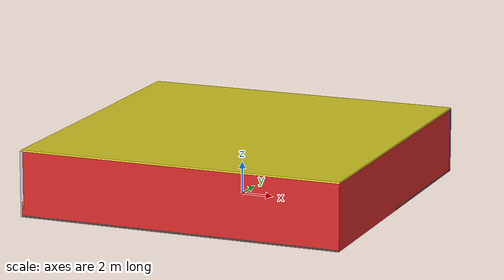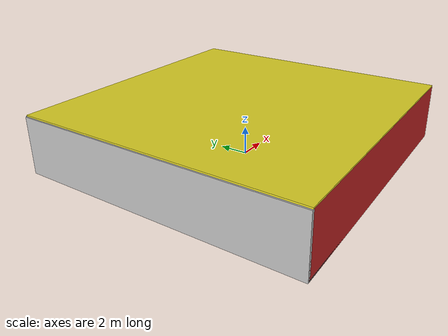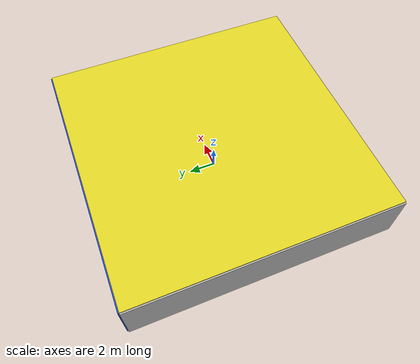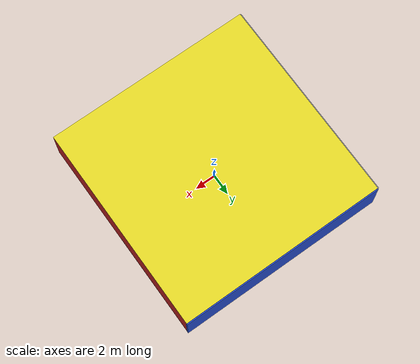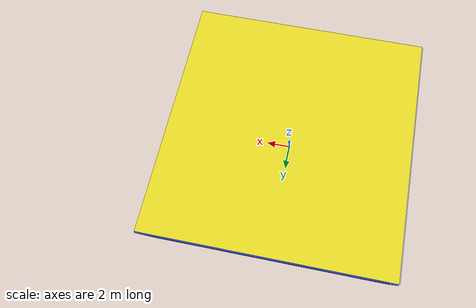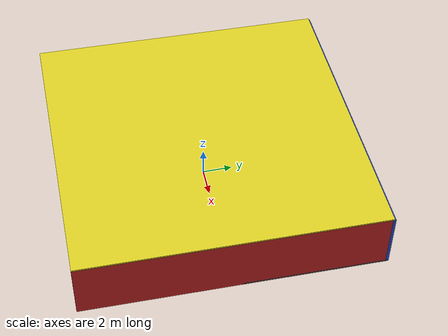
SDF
<sdf version="1.4">
 <world name="default">
  <physics type="ode">
   <max_step_size>0.001</max_step_size>
   <real_time_factor>1</real_time_factor>
   <real_time_update_rate>1000</real_time_update_rate>
   <gravity>0 0 -9.8</gravity>
  </physics>
  <scene><ambient>0.4 0.4 0.4 1</ambient><background>0.7 0.7 0.7 1</background><shadows>1</shadows></scene>
  <model name="Surrounding">
   <static>1</static>
   <link name="Ceiling">
    <collision name="Ceiling_Collision"><geometry><box><size>20 20 0.1</size></box></geometry></collision>
    <visual name="Ceiling_Visual">
     <geometry><box><size>20 20 0.1</size></box></geometry>
     <material>
      <script><uri>file://media/materials/scripts/gazebo.material</uri><name>Gazebo/Yellow</name></script>
     </material>
    </visual>
    <pose>0 0 4.05 0 0 0</pose>
   </link>
   <link name="Wall_South">
    <collision name="Wall_South_Collision">
     <geometry><box><size>20 0 4</size></box></geometry>
     <pose>0 0 2 0 -0 0</pose>
    </collision>
    <visual name="Wall_South_Visual">
     <pose>0 0 2 0 -0 0</pose>
     <geometry><box><size>20 0 4</size></box></geometry>
     <material>
      <script><uri>file://media/materials/scripts/gazebo.material</uri><name>Gazebo/Red</name></script>
     </material>
    </visual>
    <velocity_decay><linear>0</linear><angular>0</angular></velocity_decay>
    <pose>0 -10 0 0 -0 0</pose>
   </link>
   <link name="Wall_East">
    <collision name="Wall_21_Collision">
     <geometry><box><size>20 0 4</size></box></geometry>
     <pose>0 0 2 0 -0 0</pose>
    </collision>
    <visual name="Wall_21_Visual">
     <pose>0 0 2 0 -0 0</pose>
     <geometry><box><size>20 0 4</size></box></geometry>
     <material>
      <script><uri>file://media/materials/scripts/gazebo.material</uri><name>Gazebo/RedBright</name></script>
     </material>
    </visual>
    <velocity_decay><linear>0</linear><angular>0</angular></velocity_decay>
    <pose>10 0 0 0 -0 1.5708</pose>
   </link>
   <link name="Wall_North">
    <collision name="Wall_22_Collision">
     <geometry><box><size>20 0.2 4</size></box></geometry>
     <pose>0 0 2 0 -0 0</pose>
    </collision>
    <visual name="Wall_22_Visual">
     <pose>0 0 2 0 -0 0</pose>
     <geometry><box><size>20 0.2 4</size></box></geometry>
     <material>
      <script><uri>file://media/materials/scripts/gazebo.material</uri><name>Gazebo/BlueGlow</name></script>
     </material>
    </visual>
    <velocity_decay><linear>0</linear><angular>0</angular></velocity_decay>
    <pose>0 10 0 0 -0 0</pose>
   </link>
   <link name="Wall_West">
    <collision name="Wall_23_Collision">
     <geometry><box><size>20 0.2 4</size></box></geometry>
     <pose>0 0 2 0 -0 0</pose>
    </collision>
    <visual name="Wall_23_Visual">
     <pose>0 0 2 0 -0 0</pose>
     <geometry><box><size>20 0.2 4</size></box></geometry>
     <material>
      <script><uri>file://media/materials/scripts/gazebo.material</uri><name>Gazebo/CloudySky</name></script>
     </material>
    </visual>
    <velocity_decay><linear>0</linear><angular>0</angular></velocity_decay>
    <pose>-10 0 0 0 0 -1.5708</pose>
   </link>
   <link name="Ground_link">
    <collision name="collision">
     <pose>0 0 .05 0 -0 0</pose>
     <geometry><box><size>20 20 0.1</size></box></geometry>
    </collision>
    <visual name="visual">
     <pose>0 0 .05 0 -0 0</pose>
     <geometry><box><size>20 20 0.1</size></box></geometry>
     <material>
      <script><uri>file://media/materials/scripts/gazebo.material</uri><name>Gazebo/Road</name></script>
     </material>
    </visual>
   </link>
   <static>1</static>
  </model>
  <spherical_coordinates>
   <surface_model>EARTH_WGS84</surface_model>
   <latitude_deg>0</latitude_deg>
   <longitude_deg>0</longitude_deg>
   <elevation>0</elevation>
   <heading_deg>0</heading_deg>
  </spherical_coordinates>
  <light name="lightball_0" type="diffuse">
   <diffuse>0.8 0.8 0.8 1</diffuse>
   <specular>0.2 0.2 0.2 1</specular>
   <attenuation>
    <range>100</range>
    <constant>0.7</constant>
    <linear>0.01</linear>
    <quadratic>0.001</quadratic>
   </attenuation>
   <direction>-0.5 0.1 -0.9</direction>
   <pose>-5.04189842842 5.39470567499 2.24798746399 0 0 0</pose>
  </light>
  <light name="lightball_1" type="diffuse">
   <diffuse>0.8 0.8 0.8 1</diffuse>
   <specular>0.2 0.2 0.2 1</specular>
   <attenuation>
    <range>100</range>
    <constant>0.7</constant>
    <linear>0.01</linear>
    <quadratic>0.001</quadratic>
   </attenuation>
   <direction>-0.5 0.1 -0.9</direction>
   <pose>8.15817229649 -2.22300188109 1.64791200102 0 0 0</pose>
  </light>
  <light name="lightball_2" type="diffuse">
   <diffuse>0.8 0.8 0.8 1</diffuse>
   <specular>0.2 0.2 0.2 1</specular>
   <attenuation>
    <range>100</range>
    <constant>0.7</constant>
    <linear>0.01</linear>
    <quadratic>0.001</quadratic>
   </attenuation>
   <direction>-0.5 0.1 -0.9</direction>
   <pose>-4.12411519152 -7.28575307636 3.46026613528 0 0 0</pose>
  </light>
  <light name="lightball_3" type="diffuse">
   <diffuse>0.8 0.8 0.8 1</diffuse>
   <specular>0.2 0.2 0.2 1</specular>
   <attenuation>
    <range>100</range>
    <constant>0.7</constant>
    <linear>0.01</linear>
    <quadratic>0.001</quadratic>
   </attenuation>
   <direction>-0.5 0.1 -0.9</direction>
   <pose>8.95026190894 9.44399195043 1.97267369749 0 0 0</pose>
  </light>
  <light name="lightball_4" type="diffuse">
   <diffuse>0.8 0.8 0.8 1</diffuse>
   <specular>0.2 0.2 0.2 1</specular>
   <attenuation>
    <range>100</range>
    <constant>0.7</constant>
    <linear>0.01</linear>
    <quadratic>0.001</quadratic>
   </attenuation>
   <direction>-0.5 0.1 -0.9</direction>
   <pose>-6.00296531913 3.63356728284 1.79608780955 0 0 0</pose>
  </light>
  <light name="lightball_5" type="diffuse">
   <diffuse>0.8 0.8 0.8 1</diffuse>
   <specular>0.2 0.2 0.2 1</specular>
   <attenuation>
    <range>100</range>
    <constant>0.7</constant>
    <linear>0.01</linear>
    <quadratic>0.001</quadratic>
   </attenuation>
   <direction>-0.5 0.1 -0.9</direction>
   <pose>5.23947014673 2.86683330752 2.21906662524 0 0 0</pose>
  </light>
  <light name="lightball_6" type="diffuse">
   <diffuse>0.8 0.8 0.8 1</diffuse>
   <specular>0.2 0.2 0.2 1</specular>
   <attenuation>
    <range>100</range>
    <constant>0.7</constant>
    <linear>0.01</linear>
    <quadratic>0.001</quadratic>
   </attenuation>
   <direction>-0.5 0.1 -0.9</direction>
   <pose>3.36011113582 -6.37580151528 2.3698405502 0 0 0</pose>
  </light>
  <light name="lightball_7" type="diffuse">
   <diffuse>0.8 0.8 0.8 1</diffuse>
   <specular>0.2 0.2 0.2 1</specular>
   <attenuation>
    <range>100</range>
    <constant>0.7</constant>
    <linear>0.01</linear>
    <quadratic>0.001</quadratic>
   </attenuation>
   <direction>-0.5 0.1 -0.9</direction>
   <pose>7.49810916402 7.4967668345 2.98909530389 0 0 0</pose>
  </light>
  <light name="lightball_8" type="diffuse">
   <diffuse>0.8 0.8 0.8 1</diffuse>
   <specular>0.2 0.2 0.2 1</specular>
   <attenuation>
    <range>100</range>
    <constant>0.7</constant>
    <linear>0.01</linear>
    <quadratic>0.001</quadratic>
   </attenuation>
   <direction>-0.5 0.1 -0.9</direction>
   <pose>-0.022093026845 -3.75189638118 1.53973570408 0 0 0</pose>
  </light>
  <light name="lightball_9" type="diffuse">
   <diffuse>0.8 0.8 0.8 1</diffuse>
   <specular>0.2 0.2 0.2 1</specular>
   <attenuation>
    <range>100</range>
    <constant>0.7</constant>
    <linear>0.01</linear>
    <quadratic>0.001</quadratic>
   </attenuation>
   <direction>-0.5 0.1 -0.9</direction>
   <pose>4.26811875226 9.84663519801 2.82956443504 0 0 0</pose>
  </light>
  <include>
   <uri>model://construction_cone</uri>
   <pose>-7.84827552978 5.07545749994 0 0 0 0.942537832782</pose>
  </include>
  <include><uri>model://table</uri><pose>4.87744362087 0.721449303472 0 0 0 0.994036791721</pose></include>
 </world>
</sdf>

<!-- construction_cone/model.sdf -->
<sdf version="1.5">
  <model name="Construction Cone">
    <link name="link">
      <collision name="collision">
        <geometry>
          <mesh>
            <scale>10 10 10</scale>
            <uri>file://isr-testbed/construction_cone/meshes/construction_cone.dae</uri>
          </mesh>
        </geometry>
      </collision>
      <visual name="visual">
        <geometry>
          <mesh>
            <scale>10 10 10</scale>
            <uri>file://isr-testbed/construction_cone/meshes/construction_cone.dae</uri>
          </mesh>
        </geometry>
      </visual>
    </link>
  </model>
</sdf>

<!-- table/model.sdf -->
<sdf version="1.5">
  <model name="table">
    <static>true</static>
    <link name="link">
      <collision name="surface">
        <pose>0 0 1.0 0 0 0</pose>
        <geometry>
          <box>
            <size>1.5 0.8 0.03</size>
          </box>
        </geometry>
        <surface>
          <friction>
            <ode>
              <mu>0.6</mu>
              <mu2>0.6</mu2>
            </ode>
          </friction>
        </surface>
      </collision>
      <visual name="visual1">
        <pose>0 0 1.0 0 0 0</pose>
        <geometry>
          <box>
            <size>1.5 0.8 0.03</size>
          </box>
        </geometry>
        <material>
          <script>
            <uri>model://media/materials/scripts/gazebo.material</uri>
            <name>Gazebo/Wood</name>
          </script>
        </material>
      </visual>
      <collision name="front_left_leg">
        <pose>0.68 0.38 0.5 0 0 0</pose>
        <geometry>
          <cylinder>
            <radius>0.02</radius>
            <length>1.0</length>
          </cylinder>
        </geometry>
      </collision>
      <visual name="front_left_leg">
        <pose>0.68 0.38 0.5 0 0 0</pose>
        <geometry>
          <cylinder>
            <radius>0.02</radius>
            <length>1.0</length>
          </cylinder>
        </geometry>
        <material>
          <script>
            <uri>model://media/materials/scripts/gazebo.material</uri>
            <name>Gazebo/Grey</name>
          </script>
        </material>
      </visual>
      <collision name="front_right_leg">
        <pose>0.68 -0.38 0.5 0 0 0</pose>
        <geometry>
          <cylinder>
            <radius>0.02</radius>
            <length>1.0</length>
          </cylinder>
        </geometry>
      </collision>
      <visual name="front_right_leg">
        <pose>0.68 -0.38 0.5 0 0 0</pose>
        <geometry>
          <cylinder>
            <radius>0.02</radius>
            <length>1.0</length>
          </cylinder>
        </geometry>
        <material>
          <script>
            <uri>model://media/materials/scripts/gazebo.material</uri>
            <name>Gazebo/Grey</name>
          </script>
        </material>
      </visual>
      <collision name="back_right_leg">
        <pose>-0.68 -0.38 0.5 0 0 0</pose>
        <geometry>
          <cylinder>
            <radius>0.02</radius>
            <length>1.0</length>
          </cylinder>
        </geometry>
      </collision>
      <visual name="back_right_leg">
        <pose>-0.68 -0.38 0.5 0 0 0</pose>
        <geometry>
          <cylinder>
            <radius>0.02</radius>
            <length>1.0</length>
          </cylinder>
        </geometry>
        <material>
          <script>
            <uri>model://media/materials/scripts/gazebo.material</uri>
            <name>Gazebo/Grey</name>
          </script>
        </material>
      </visual>
      <collision name="back_left_leg">
        <pose>-0.68 0.38 0.5 0 0 0</pose>
        <geometry>
          <cylinder>
            <radius>0.02</radius>
            <length>1.0</length>
          </cylinder>
        </geometry>
      </collision>
      <visual name="back_left_leg">
        <pose>-0.68 0.38 0.5 0 0 0</pose>
        <geometry>
          <cylinder>
            <radius>0.02</radius>
            <length>1.0</length>
          </cylinder>
        </geometry>
        <material>
          <script>
            <uri>model://media/materials/scripts/gazebo.material</uri>
            <name>Gazebo/Grey</name>
          </script>
        </material>
      </visual>
    </link>
  </model>
</sdf>
